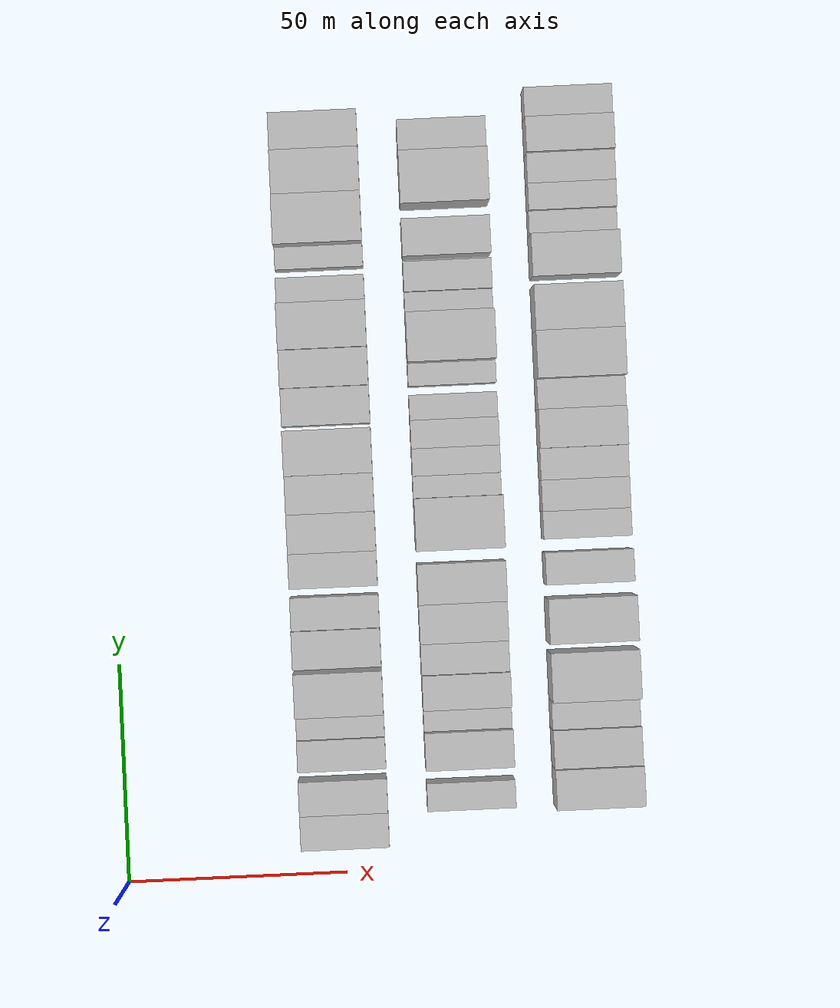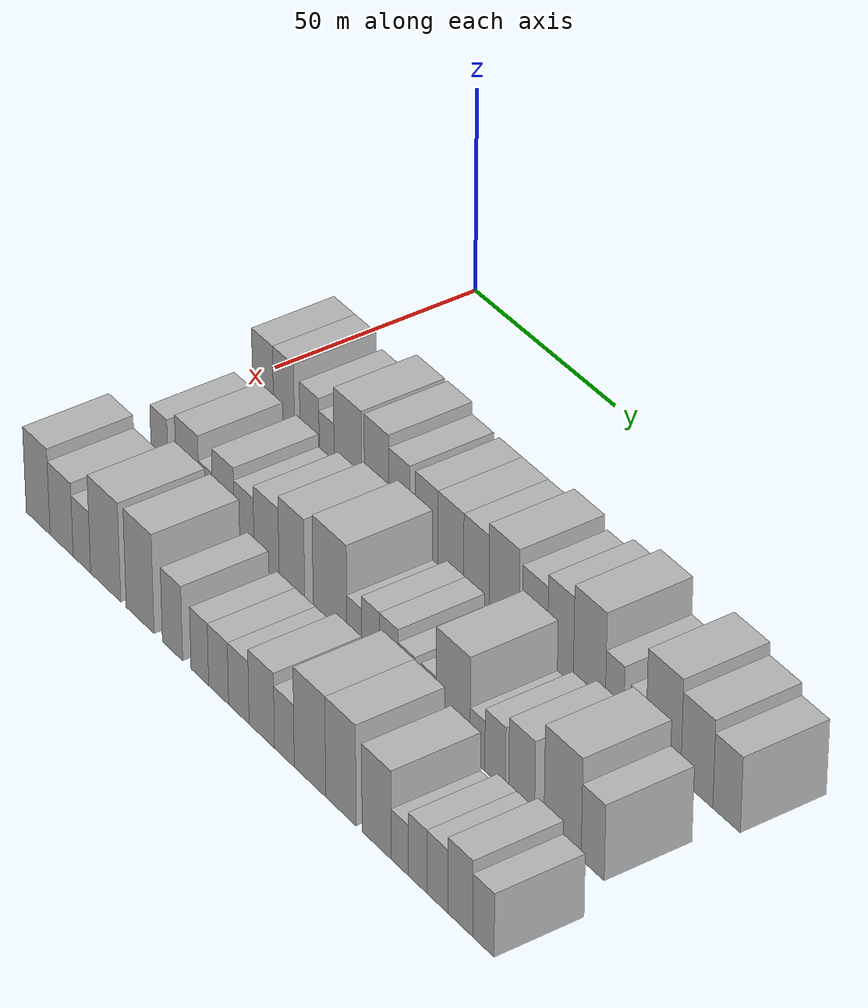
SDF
<sdf version="1.6">
 <world name="default">
  <model name="building_42">
   <static>1</static>
   <pose>50.0000 10.7546 0 0.000000 0.000000 0.000000</pose>
   <link name="link">
    <pose>0 0 9.00 0 0 0</pose>
    <collision name="collision"><geometry><box><size>20.0000 7.7320 18.0000</size></box></geometry></collision>
    <visual name="visual">
     <cast_shadows>0</cast_shadows>
     <geometry><box><size>20.0000 7.7320 18.0000</size></box></geometry>
     <material>
      <script>
       <uri>model://HANNAS_wall/materials/scripts</uri>
       <uri>model://HANNAS_wall/materials/textures</uri>
       <name>vrc/HANNAS_wall</name>
      </script>
     </material>
    </visual>
   </link>
  </model>
  <model name="building_43">
   <static>1</static>
   <pose>50.0000 18.4982 0 0.000000 0.000000 0.000000</pose>
   <link name="link">
    <pose>0 0 9.00 0 0 0</pose>
    <collision name="collision"><geometry><box><size>20.0000 7.7552 18.0000</size></box></geometry></collision>
    <visual name="visual">
     <cast_shadows>0</cast_shadows>
     <geometry><box><size>20.0000 7.7552 18.0000</size></box></geometry>
     <material>
      <script>
       <uri>model://HANNAS_wall/materials/scripts</uri>
       <uri>model://HANNAS_wall/materials/textures</uri>
       <name>vrc/HANNAS_wall</name>
      </script>
     </material>
    </visual>
   </link>
  </model>
  <model name="building_44">
   <static>1</static>
   <pose>50.0000 27.9174 0 0.000000 0.000000 0.000000</pose>
   <link name="link">
    <pose>0 0 7.50 0 0 0</pose>
    <collision name="collision"><geometry><box><size>20.0000 7.0834 15.0000</size></box></geometry></collision>
    <visual name="visual">
     <cast_shadows>0</cast_shadows>
     <geometry><box><size>20.0000 7.0834 15.0000</size></box></geometry>
     <material>
      <script>
       <uri>model://HANNAS_wall/materials/scripts</uri>
       <uri>model://HANNAS_wall/materials/textures</uri>
       <name>vrc/HANNAS_wall</name>
      </script>
     </material>
    </visual>
   </link>
  </model>
  <model name="building_45">
   <static>1</static>
   <pose>50.0000 34.1626 0 0.000000 0.000000 0.000000</pose>
   <link name="link">
    <pose>0 0 6.00 0 0 0</pose>
    <collision name="collision"><geometry><box><size>20.0000 5.4071 12.0000</size></box></geometry></collision>
    <visual name="visual">
     <cast_shadows>0</cast_shadows>
     <geometry><box><size>20.0000 5.4071 12.0000</size></box></geometry>
     <material>
      <script>
       <uri>model://HANNAS_wall/materials/scripts</uri>
       <uri>model://HANNAS_wall/materials/textures</uri>
       <name>vrc/HANNAS_wall</name>
      </script>
     </material>
    </visual>
   </link>
  </model>
  <model name="building_46">
   <static>1</static>
   <pose>50.0000 41.8215 0 0.000000 0.000000 0.000000</pose>
   <link name="link">
    <pose>0 0 10.50 0 0 0</pose>
    <collision name="collision"><geometry><box><size>20.0000 9.9106 21.0000</size></box></geometry></collision>
    <visual name="visual">
     <cast_shadows>0</cast_shadows>
     <geometry><box><size>20.0000 9.9106 21.0000</size></box></geometry>
     <material>
      <script>
       <uri>model://HANNAS_wall/materials/scripts</uri>
       <uri>model://HANNAS_wall/materials/textures</uri>
       <name>vrc/HANNAS_wall</name>
      </script>
     </material>
    </visual>
   </link>
  </model>
  <model name="building_47">
   <static>1</static>
   <pose>50.0000 52.1036 0 0.000000 0.000000 0.000000</pose>
   <link name="link">
    <pose>0 0 10.50 0 0 0</pose>
    <collision name="collision"><geometry><box><size>20.0000 8.6536 21.0000</size></box></geometry></collision>
    <visual name="visual">
     <cast_shadows>0</cast_shadows>
     <geometry><box><size>20.0000 8.6536 21.0000</size></box></geometry>
     <material>
      <script>
       <uri>model://HANNAS_wall/materials/scripts</uri>
       <uri>model://HANNAS_wall/materials/textures</uri>
       <name>vrc/HANNAS_wall</name>
      </script>
     </material>
    </visual>
   </link>
  </model>
  <model name="building_48">
   <static>1</static>
   <pose>50.0000 60.1718 0 0.000000 0.000000 0.000000</pose>
   <link name="link">
    <pose>0 0 9.00 0 0 0</pose>
    <collision name="collision"><geometry><box><size>20.0000 7.4828 18.0000</size></box></geometry></collision>
    <visual name="visual">
     <cast_shadows>0</cast_shadows>
     <geometry><box><size>20.0000 7.4828 18.0000</size></box></geometry>
     <material>
      <script>
       <uri>model://HANNAS_wall/materials/scripts</uri>
       <uri>model://HANNAS_wall/materials/textures</uri>
       <name>vrc/HANNAS_wall</name>
      </script>
     </material>
    </visual>
   </link>
  </model>
  <model name="building_49">
   <static>1</static>
   <pose>50.0000 69.8449 0 0.000000 0.000000 0.000000</pose>
   <link name="link">
    <pose>0 0 9.00 0 0 0</pose>
    <collision name="collision"><geometry><box><size>20.0000 7.8635 18.0000</size></box></geometry></collision>
    <visual name="visual">
     <cast_shadows>0</cast_shadows>
     <geometry><box><size>20.0000 7.8635 18.0000</size></box></geometry>
     <material>
      <script>
       <uri>model://HANNAS_wall/materials/scripts</uri>
       <uri>model://HANNAS_wall/materials/textures</uri>
       <name>vrc/HANNAS_wall</name>
      </script>
     </material>
    </visual>
   </link>
  </model>
  <model name="building_50">
   <static>1</static>
   <pose>50.0000 78.2156 0 0.000000 0.000000 0.000000</pose>
   <link name="link">
    <pose>0 0 9.00 0 0 0</pose>
    <collision name="collision"><geometry><box><size>20.0000 8.8777 18.0000</size></box></geometry></collision>
    <visual name="visual">
     <cast_shadows>0</cast_shadows>
     <geometry><box><size>20.0000 8.8777 18.0000</size></box></geometry>
     <material>
      <script>
       <uri>model://HANNAS_wall/materials/scripts</uri>
       <uri>model://HANNAS_wall/materials/textures</uri>
       <name>vrc/HANNAS_wall</name>
      </script>
     </material>
    </visual>
   </link>
  </model>
  <model name="building_51">
   <static>1</static>
   <pose>50.0000 87.0065 0 0.000000 0.000000 0.000000</pose>
   <link name="link">
    <pose>0 0 9.00 0 0 0</pose>
    <collision name="collision"><geometry><box><size>20.0000 8.7040 18.0000</size></box></geometry></collision>
    <visual name="visual">
     <cast_shadows>0</cast_shadows>
     <geometry><box><size>20.0000 8.7040 18.0000</size></box></geometry>
     <material>
      <script>
       <uri>model://HANNAS_wall/materials/scripts</uri>
       <uri>model://HANNAS_wall/materials/textures</uri>
       <name>vrc/HANNAS_wall</name>
      </script>
     </material>
    </visual>
   </link>
  </model>
  <model name="building_52">
   <static>1</static>
   <pose>50.0000 96.4628 0 0.000000 0.000000 0.000000</pose>
   <link name="link">
    <pose>0 0 10.50 0 0 0</pose>
    <collision name="collision"><geometry><box><size>20.0000 10.2087 21.0000</size></box></geometry></collision>
    <visual name="visual">
     <cast_shadows>0</cast_shadows>
     <geometry><box><size>20.0000 10.2087 21.0000</size></box></geometry>
     <material>
      <script>
       <uri>model://HANNAS_wall/materials/scripts</uri>
       <uri>model://HANNAS_wall/materials/textures</uri>
       <name>vrc/HANNAS_wall</name>
      </script>
     </material>
    </visual>
   </link>
  </model>
  <model name="building_53">
   <static>1</static>
   <pose>50.0000 106.8379 0 0.000000 0.000000 0.000000</pose>
   <link name="link">
    <pose>0 0 9.00 0 0 0</pose>
    <collision name="collision"><geometry><box><size>20.0000 8.5415 18.0000</size></box></geometry></collision>
    <visual name="visual">
     <cast_shadows>0</cast_shadows>
     <geometry><box><size>20.0000 8.5415 18.0000</size></box></geometry>
     <material>
      <script>
       <uri>model://HANNAS_wall/materials/scripts</uri>
       <uri>model://HANNAS_wall/materials/textures</uri>
       <name>vrc/HANNAS_wall</name>
      </script>
     </material>
    </visual>
   </link>
  </model>
  <model name="building_54">
   <static>1</static>
   <pose>50.0000 115.3977 0 0.000000 0.000000 0.000000</pose>
   <link name="link">
    <pose>0 0 10.50 0 0 0</pose>
    <collision name="collision"><geometry><box><size>20.0000 8.5783 21.0000</size></box></geometry></collision>
    <visual name="visual">
     <cast_shadows>0</cast_shadows>
     <geometry><box><size>20.0000 8.5783 21.0000</size></box></geometry>
     <material>
      <script>
       <uri>model://HANNAS_wall/materials/scripts</uri>
       <uri>model://HANNAS_wall/materials/textures</uri>
       <name>vrc/HANNAS_wall</name>
      </script>
     </material>
    </visual>
   </link>
  </model>
  <model name="building_55">
   <static>1</static>
   <pose>50.0000 124.9499 0 0.000000 0.000000 0.000000</pose>
   <link name="link">
    <pose>0 0 12.00 0 0 0</pose>
    <collision name="collision"><geometry><box><size>20.0000 10.5261 24.0000</size></box></geometry></collision>
    <visual name="visual">
     <cast_shadows>0</cast_shadows>
     <geometry><box><size>20.0000 10.5261 24.0000</size></box></geometry>
     <material>
      <script>
       <uri>model://HANNAS_wall/materials/scripts</uri>
       <uri>model://HANNAS_wall/materials/textures</uri>
       <name>vrc/HANNAS_wall</name>
      </script>
     </material>
    </visual>
   </link>
  </model>
  <model name="building_56">
   <static>1</static>
   <pose>50.0000 133.2304 0 0.000000 0.000000 0.000000</pose>
   <link name="link">
    <pose>0 0 7.50 0 0 0</pose>
    <collision name="collision"><geometry><box><size>20.0000 6.0347 15.0000</size></box></geometry></collision>
    <visual name="visual">
     <cast_shadows>0</cast_shadows>
     <geometry><box><size>20.0000 6.0347 15.0000</size></box></geometry>
     <material>
      <script>
       <uri>model://HANNAS_wall/materials/scripts</uri>
       <uri>model://HANNAS_wall/materials/textures</uri>
       <name>vrc/HANNAS_wall</name>
      </script>
     </material>
    </visual>
   </link>
  </model>
  <model name="building_57">
   <static>1</static>
   <pose>50.0000 140.8113 0 0.000000 0.000000 0.000000</pose>
   <link name="link">
    <pose>0 0 6.00 0 0 0</pose>
    <collision name="collision"><geometry><box><size>20.0000 5.1271 12.0000</size></box></geometry></collision>
    <visual name="visual">
     <cast_shadows>0</cast_shadows>
     <geometry><box><size>20.0000 5.1271 12.0000</size></box></geometry>
     <material>
      <script>
       <uri>model://HANNAS_wall/materials/scripts</uri>
       <uri>model://HANNAS_wall/materials/textures</uri>
       <name>vrc/HANNAS_wall</name>
      </script>
     </material>
    </visual>
   </link>
  </model>
  <model name="building_58">
   <static>1</static>
   <pose>50.0000 148.9888 0 0.000000 0.000000 0.000000</pose>
   <link name="link">
    <pose>0 0 12.00 0 0 0</pose>
    <collision name="collision"><geometry><box><size>20.0000 11.2279 24.0000</size></box></geometry></collision>
    <visual name="visual">
     <cast_shadows>0</cast_shadows>
     <geometry><box><size>20.0000 11.2279 24.0000</size></box></geometry>
     <material>
      <script>
       <uri>model://HANNAS_wall/materials/scripts</uri>
       <uri>model://HANNAS_wall/materials/textures</uri>
       <name>vrc/HANNAS_wall</name>
      </script>
     </material>
    </visual>
   </link>
  </model>
  <model name="building_59">
   <static>1</static>
   <pose>50.0000 159.6870 0 0.000000 0.000000 0.000000</pose>
   <link name="link">
    <pose>0 0 10.50 0 0 0</pose>
    <collision name="collision"><geometry><box><size>20.0000 10.1684 21.0000</size></box></geometry></collision>
    <visual name="visual">
     <cast_shadows>0</cast_shadows>
     <geometry><box><size>20.0000 10.1684 21.0000</size></box></geometry>
     <material>
      <script>
       <uri>model://HANNAS_wall/materials/scripts</uri>
       <uri>model://HANNAS_wall/materials/textures</uri>
       <name>vrc/HANNAS_wall</name>
      </script>
     </material>
    </visual>
   </link>
  </model>
  <model name="building_60">
   <static>1</static>
   <pose>50.0000 169.0942 0 0.000000 0.000000 0.000000</pose>
   <link name="link">
    <pose>0 0 9.00 0 0 0</pose>
    <collision name="collision"><geometry><box><size>20.0000 8.6460 18.0000</size></box></geometry></collision>
    <visual name="visual">
     <cast_shadows>0</cast_shadows>
     <geometry><box><size>20.0000 8.6460 18.0000</size></box></geometry>
     <material>
      <script>
       <uri>model://HANNAS_wall/materials/scripts</uri>
       <uri>model://HANNAS_wall/materials/textures</uri>
       <name>vrc/HANNAS_wall</name>
      </script>
     </material>
    </visual>
   </link>
  </model>
  <model name="building_114">
   <static>1</static>
   <pose>79.0000 17.4192 0 0.000000 0.000000 0.000000</pose>
   <link name="link">
    <pose>0 0 7.50 0 0 0</pose>
    <collision name="collision"><geometry><box><size>20.0000 6.3060 15.0000</size></box></geometry></collision>
    <visual name="visual">
     <cast_shadows>0</cast_shadows>
     <geometry><box><size>20.0000 6.3060 15.0000</size></box></geometry>
     <material>
      <script>
       <uri>model://HANNAS_wall/materials/scripts</uri>
       <uri>model://HANNAS_wall/materials/textures</uri>
       <name>vrc/HANNAS_wall</name>
      </script>
     </material>
    </visual>
   </link>
  </model>
  <model name="building_115">
   <static>1</static>
   <pose>79.0000 27.8315 0 0.000000 0.000000 0.000000</pose>
   <link name="link">
    <pose>0 0 9.00 0 0 0</pose>
    <collision name="collision"><geometry><box><size>20.0000 8.5186 18.0000</size></box></geometry></collision>
    <visual name="visual">
     <cast_shadows>0</cast_shadows>
     <geometry><box><size>20.0000 8.5186 18.0000</size></box></geometry>
     <material>
      <script>
       <uri>model://HANNAS_wall/materials/scripts</uri>
       <uri>model://HANNAS_wall/materials/textures</uri>
       <name>vrc/HANNAS_wall</name>
      </script>
     </material>
    </visual>
   </link>
  </model>
  <model name="building_116">
   <static>1</static>
   <pose>79.0000 34.6011 0 0.000000 0.000000 0.000000</pose>
   <link name="link">
    <pose>0 0 6.00 0 0 0</pose>
    <collision name="collision"><geometry><box><size>20.0000 5.0207 12.0000</size></box></geometry></collision>
    <visual name="visual">
     <cast_shadows>0</cast_shadows>
     <geometry><box><size>20.0000 5.0207 12.0000</size></box></geometry>
     <material>
      <script>
       <uri>model://HANNAS_wall/materials/scripts</uri>
       <uri>model://HANNAS_wall/materials/textures</uri>
       <name>vrc/HANNAS_wall</name>
      </script>
     </material>
    </visual>
   </link>
  </model>
  <model name="building_117">
   <static>1</static>
   <pose>79.0000 41.0628 0 0.000000 0.000000 0.000000</pose>
   <link name="link">
    <pose>0 0 9.00 0 0 0</pose>
    <collision name="collision"><geometry><box><size>20.0000 7.9028 18.0000</size></box></geometry></collision>
    <visual name="visual">
     <cast_shadows>0</cast_shadows>
     <geometry><box><size>20.0000 7.9028 18.0000</size></box></geometry>
     <material>
      <script>
       <uri>model://HANNAS_wall/materials/scripts</uri>
       <uri>model://HANNAS_wall/materials/textures</uri>
       <name>vrc/HANNAS_wall</name>
      </script>
     </material>
    </visual>
   </link>
  </model>
  <model name="building_118">
   <static>1</static>
   <pose>79.0000 48.5735 0 0.000000 0.000000 0.000000</pose>
   <link name="link">
    <pose>0 0 7.50 0 0 0</pose>
    <collision name="collision"><geometry><box><size>20.0000 7.1185 15.0000</size></box></geometry></collision>
    <visual name="visual">
     <cast_shadows>0</cast_shadows>
     <geometry><box><size>20.0000 7.1185 15.0000</size></box></geometry>
     <material>
      <script>
       <uri>model://HANNAS_wall/materials/scripts</uri>
       <uri>model://HANNAS_wall/materials/textures</uri>
       <name>vrc/HANNAS_wall</name>
      </script>
     </material>
    </visual>
   </link>
  </model>
  <model name="building_119">
   <static>1</static>
   <pose>79.0000 56.6145 0 0.000000 0.000000 0.000000</pose>
   <link name="link">
    <pose>0 0 9.00 0 0 0</pose>
    <collision name="collision"><geometry><box><size>20.0000 8.9637 18.0000</size></box></geometry></collision>
    <visual name="visual">
     <cast_shadows>0</cast_shadows>
     <geometry><box><size>20.0000 8.9637 18.0000</size></box></geometry>
     <material>
      <script>
       <uri>model://HANNAS_wall/materials/scripts</uri>
       <uri>model://HANNAS_wall/materials/textures</uri>
       <name>vrc/HANNAS_wall</name>
      </script>
     </material>
    </visual>
   </link>
  </model>
  <model name="building_120">
   <static>1</static>
   <pose>79.0000 65.6613 0 0.000000 0.000000 0.000000</pose>
   <link name="link">
    <pose>0 0 10.50 0 0 0</pose>
    <collision name="collision"><geometry><box><size>20.0000 9.1299 21.0000</size></box></geometry></collision>
    <visual name="visual">
     <cast_shadows>0</cast_shadows>
     <geometry><box><size>20.0000 9.1299 21.0000</size></box></geometry>
     <material>
      <script>
       <uri>model://HANNAS_wall/materials/scripts</uri>
       <uri>model://HANNAS_wall/materials/textures</uri>
       <name>vrc/HANNAS_wall</name>
      </script>
     </material>
    </visual>
   </link>
  </model>
  <model name="building_121">
   <static>1</static>
   <pose>79.0000 79.1402 0 0.000000 0.000000 0.000000</pose>
   <link name="link">
    <pose>0 0 12.00 0 0 0</pose>
    <collision name="collision"><geometry><box><size>20.0000 11.8278 24.0000</size></box></geometry></collision>
    <visual name="visual">
     <cast_shadows>0</cast_shadows>
     <geometry><box><size>20.0000 11.8278 24.0000</size></box></geometry>
     <material>
      <script>
       <uri>model://HANNAS_wall/materials/scripts</uri>
       <uri>model://HANNAS_wall/materials/textures</uri>
       <name>vrc/HANNAS_wall</name>
      </script>
     </material>
    </visual>
   </link>
  </model>
  <model name="building_122">
   <static>1</static>
   <pose>79.0000 87.5717 0 0.000000 0.000000 0.000000</pose>
   <link name="link">
    <pose>0 0 6.00 0 0 0</pose>
    <collision name="collision"><geometry><box><size>20.0000 5.0352 12.0000</size></box></geometry></collision>
    <visual name="visual">
     <cast_shadows>0</cast_shadows>
     <geometry><box><size>20.0000 5.0352 12.0000</size></box></geometry>
     <material>
      <script>
       <uri>model://HANNAS_wall/materials/scripts</uri>
       <uri>model://HANNAS_wall/materials/textures</uri>
       <name>vrc/HANNAS_wall</name>
      </script>
     </material>
    </visual>
   </link>
  </model>
  <model name="building_123">
   <static>1</static>
   <pose>79.0000 93.2001 0 0.000000 0.000000 0.000000</pose>
   <link name="link">
    <pose>0 0 7.50 0 0 0</pose>
    <collision name="collision"><geometry><box><size>20.0000 6.2215 15.0000</size></box></geometry></collision>
    <visual name="visual">
     <cast_shadows>0</cast_shadows>
     <geometry><box><size>20.0000 6.2215 15.0000</size></box></geometry>
     <material>
      <script>
       <uri>model://HANNAS_wall/materials/scripts</uri>
       <uri>model://HANNAS_wall/materials/textures</uri>
       <name>vrc/HANNAS_wall</name>
      </script>
     </material>
    </visual>
   </link>
  </model>
  <model name="building_124">
   <static>1</static>
   <pose>79.0000 99.5261 0 0.000000 0.000000 0.000000</pose>
   <link name="link">
    <pose>0 0 7.50 0 0 0</pose>
    <collision name="collision"><geometry><box><size>20.0000 6.4305 15.0000</size></box></geometry></collision>
    <visual name="visual">
     <cast_shadows>0</cast_shadows>
     <geometry><box><size>20.0000 6.4305 15.0000</size></box></geometry>
     <material>
      <script>
       <uri>model://HANNAS_wall/materials/scripts</uri>
       <uri>model://HANNAS_wall/materials/textures</uri>
       <name>vrc/HANNAS_wall</name>
      </script>
     </material>
    </visual>
   </link>
  </model>
  <model name="building_125">
   <static>1</static>
   <pose>79.0000 105.6167 0 0.000000 0.000000 0.000000</pose>
   <link name="link">
    <pose>0 0 6.00 0 0 0</pose>
    <collision name="collision"><geometry><box><size>20.0000 5.7505 12.0000</size></box></geometry></collision>
    <visual name="visual">
     <cast_shadows>0</cast_shadows>
     <geometry><box><size>20.0000 5.7505 12.0000</size></box></geometry>
     <material>
      <script>
       <uri>model://HANNAS_wall/materials/scripts</uri>
       <uri>model://HANNAS_wall/materials/textures</uri>
       <name>vrc/HANNAS_wall</name>
      </script>
     </material>
    </visual>
   </link>
  </model>
  <model name="building_126">
   <static>1</static>
   <pose>79.0000 113.0846 0 0.000000 0.000000 0.000000</pose>
   <link name="link">
    <pose>0 0 6.00 0 0 0</pose>
    <collision name="collision"><geometry><box><size>20.0000 5.1854 12.0000</size></box></geometry></collision>
    <visual name="visual">
     <cast_shadows>0</cast_shadows>
     <geometry><box><size>20.0000 5.1854 12.0000</size></box></geometry>
     <material>
      <script>
       <uri>model://HANNAS_wall/materials/scripts</uri>
       <uri>model://HANNAS_wall/materials/textures</uri>
       <name>vrc/HANNAS_wall</name>
      </script>
     </material>
    </visual>
   </link>
  </model>
  <model name="building_127">
   <static>1</static>
   <pose>79.0000 121.2995 0 0.000000 0.000000 0.000000</pose>
   <link name="link">
    <pose>0 0 12.00 0 0 0</pose>
    <collision name="collision"><geometry><box><size>20.0000 11.2445 24.0000</size></box></geometry></collision>
    <visual name="visual">
     <cast_shadows>0</cast_shadows>
     <geometry><box><size>20.0000 11.2445 24.0000</size></box></geometry>
     <material>
      <script>
       <uri>model://HANNAS_wall/materials/scripts</uri>
       <uri>model://HANNAS_wall/materials/textures</uri>
       <name>vrc/HANNAS_wall</name>
      </script>
     </material>
    </visual>
   </link>
  </model>
  <model name="building_128">
   <static>1</static>
   <pose>79.0000 129.3780 0 0.000000 0.000000 0.000000</pose>
   <link name="link">
    <pose>0 0 6.00 0 0 0</pose>
    <collision name="collision"><geometry><box><size>20.0000 4.9124 12.0000</size></box></geometry></collision>
    <visual name="visual">
     <cast_shadows>0</cast_shadows>
     <geometry><box><size>20.0000 4.9124 12.0000</size></box></geometry>
     <material>
      <script>
       <uri>model://HANNAS_wall/materials/scripts</uri>
       <uri>model://HANNAS_wall/materials/textures</uri>
       <name>vrc/HANNAS_wall</name>
      </script>
     </material>
    </visual>
   </link>
  </model>
  <model name="building_129">
   <static>1</static>
   <pose>79.0000 135.2543 0 0.000000 0.000000 0.000000</pose>
   <link name="link">
    <pose>0 0 7.50 0 0 0</pose>
    <collision name="collision"><geometry><box><size>20.0000 6.8402 15.0000</size></box></geometry></collision>
    <visual name="visual">
     <cast_shadows>0</cast_shadows>
     <geometry><box><size>20.0000 6.8402 15.0000</size></box></geometry>
     <material>
      <script>
       <uri>model://HANNAS_wall/materials/scripts</uri>
       <uri>model://HANNAS_wall/materials/textures</uri>
       <name>vrc/HANNAS_wall</name>
      </script>
     </material>
    </visual>
   </link>
  </model>
  <model name="building_130">
   <static>1</static>
   <pose>79.0000 143.9314 0 0.000000 0.000000 0.000000</pose>
   <link name="link">
    <pose>0 0 9.00 0 0 0</pose>
    <collision name="collision"><geometry><box><size>20.0000 8.5140 18.0000</size></box></geometry></collision>
    <visual name="visual">
     <cast_shadows>0</cast_shadows>
     <geometry><box><size>20.0000 8.5140 18.0000</size></box></geometry>
     <material>
      <script>
       <uri>model://HANNAS_wall/materials/scripts</uri>
       <uri>model://HANNAS_wall/materials/textures</uri>
       <name>vrc/HANNAS_wall</name>
      </script>
     </material>
    </visual>
   </link>
  </model>
  <model name="building_131">
   <static>1</static>
   <pose>79.0000 157.1589 0 0.000000 0.000000 0.000000</pose>
   <link name="link">
    <pose>0 0 12.00 0 0 0</pose>
    <collision name="collision"><geometry><box><size>20.0000 11.9410 24.0000</size></box></geometry></collision>
    <visual name="visual">
     <cast_shadows>0</cast_shadows>
     <geometry><box><size>20.0000 11.9410 24.0000</size></box></geometry>
     <material>
      <script>
       <uri>model://HANNAS_wall/materials/scripts</uri>
       <uri>model://HANNAS_wall/materials/textures</uri>
       <name>vrc/HANNAS_wall</name>
      </script>
     </material>
    </visual>
   </link>
  </model>
  <model name="building_132">
   <static>1</static>
   <pose>79.0000 166.8047 0 0.000000 0.000000 0.000000</pose>
   <link name="link">
    <pose>0 0 9.00 0 0 0</pose>
    <collision name="collision"><geometry><box><size>20.0000 7.3505 18.0000</size></box></geometry></collision>
    <visual name="visual">
     <cast_shadows>0</cast_shadows>
     <geometry><box><size>20.0000 7.3505 18.0000</size></box></geometry>
     <material>
      <script>
       <uri>model://HANNAS_wall/materials/scripts</uri>
       <uri>model://HANNAS_wall/materials/textures</uri>
       <name>vrc/HANNAS_wall</name>
      </script>
     </material>
    </visual>
   </link>
  </model>
  <model name="building_187">
   <static>1</static>
   <pose>108.0000 18.1432 0 0.000000 0.000000 0.000000</pose>
   <link name="link">
    <pose>0 0 10.50 0 0 0</pose>
    <collision name="collision"><geometry><box><size>20.0000 9.0304 21.0000</size></box></geometry></collision>
    <visual name="visual">
     <cast_shadows>0</cast_shadows>
     <geometry><box><size>20.0000 9.0304 21.0000</size></box></geometry>
     <material>
      <script>
       <uri>model://HANNAS_wall/materials/scripts</uri>
       <uri>model://HANNAS_wall/materials/textures</uri>
       <name>vrc/HANNAS_wall</name>
      </script>
     </material>
    </visual>
   </link>
  </model>
  <model name="building_188">
   <static>1</static>
   <pose>108.0000 27.0193 0 0.000000 0.000000 0.000000</pose>
   <link name="link">
    <pose>0 0 9.00 0 0 0</pose>
    <collision name="collision"><geometry><box><size>20.0000 8.7217 18.0000</size></box></geometry></collision>
    <visual name="visual">
     <cast_shadows>0</cast_shadows>
     <geometry><box><size>20.0000 8.7217 18.0000</size></box></geometry>
     <material>
      <script>
       <uri>model://HANNAS_wall/materials/scripts</uri>
       <uri>model://HANNAS_wall/materials/textures</uri>
       <name>vrc/HANNAS_wall</name>
      </script>
     </material>
    </visual>
   </link>
  </model>
  <model name="building_189">
   <static>1</static>
   <pose>108.0000 34.6457 0 0.000000 0.000000 0.000000</pose>
   <link name="link">
    <pose>0 0 7.50 0 0 0</pose>
    <collision name="collision"><geometry><box><size>20.0000 6.5312 15.0000</size></box></geometry></collision>
    <visual name="visual">
     <cast_shadows>0</cast_shadows>
     <geometry><box><size>20.0000 6.5312 15.0000</size></box></geometry>
     <material>
      <script>
       <uri>model://HANNAS_wall/materials/scripts</uri>
       <uri>model://HANNAS_wall/materials/textures</uri>
       <name>vrc/HANNAS_wall</name>
      </script>
     </material>
    </visual>
   </link>
  </model>
  <model name="building_190">
   <static>1</static>
   <pose>108.0000 43.4810 0 0.000000 0.000000 0.000000</pose>
   <link name="link">
    <pose>0 0 12.00 0 0 0</pose>
    <collision name="collision"><geometry><box><size>20.0000 11.1395 24.0000</size></box></geometry></collision>
    <visual name="visual">
     <cast_shadows>0</cast_shadows>
     <geometry><box><size>20.0000 11.1395 24.0000</size></box></geometry>
     <material>
      <script>
       <uri>model://HANNAS_wall/materials/scripts</uri>
       <uri>model://HANNAS_wall/materials/textures</uri>
       <name>vrc/HANNAS_wall</name>
      </script>
     </material>
    </visual>
   </link>
  </model>
  <model name="building_191">
   <static>1</static>
   <pose>108.0000 56.1351 0 0.000000 0.000000 0.000000</pose>
   <link name="link">
    <pose>0 0 12.00 0 0 0</pose>
    <collision name="collision"><geometry><box><size>20.0000 10.1688 24.0000</size></box></geometry></collision>
    <visual name="visual">
     <cast_shadows>0</cast_shadows>
     <geometry><box><size>20.0000 10.1688 24.0000</size></box></geometry>
     <material>
      <script>
       <uri>model://HANNAS_wall/materials/scripts</uri>
       <uri>model://HANNAS_wall/materials/textures</uri>
       <name>vrc/HANNAS_wall</name>
      </script>
     </material>
    </visual>
   </link>
  </model>
  <model name="building_192">
   <static>1</static>
   <pose>108.0000 67.8744 0 0.000000 0.000000 0.000000</pose>
   <link name="link">
    <pose>0 0 9.00 0 0 0</pose>
    <collision name="collision"><geometry><box><size>20.0000 7.3099 18.0000</size></box></geometry></collision>
    <visual name="visual">
     <cast_shadows>0</cast_shadows>
     <geometry><box><size>20.0000 7.3099 18.0000</size></box></geometry>
     <material>
      <script>
       <uri>model://HANNAS_wall/materials/scripts</uri>
       <uri>model://HANNAS_wall/materials/textures</uri>
       <name>vrc/HANNAS_wall</name>
      </script>
     </material>
    </visual>
   </link>
  </model>
  <model name="building_193">
   <static>1</static>
   <pose>108.0000 77.6681 0 0.000000 0.000000 0.000000</pose>
   <link name="link">
    <pose>0 0 7.50 0 0 0</pose>
    <collision name="collision"><geometry><box><size>20.0000 6.2776 15.0000</size></box></geometry></collision>
    <visual name="visual">
     <cast_shadows>0</cast_shadows>
     <geometry><box><size>20.0000 6.2776 15.0000</size></box></geometry>
     <material>
      <script>
       <uri>model://HANNAS_wall/materials/scripts</uri>
       <uri>model://HANNAS_wall/materials/textures</uri>
       <name>vrc/HANNAS_wall</name>
      </script>
     </material>
    </visual>
   </link>
  </model>
  <model name="building_194">
   <static>1</static>
   <pose>108.0000 84.3473 0 0.000000 0.000000 0.000000</pose>
   <link name="link">
    <pose>0 0 7.50 0 0 0</pose>
    <collision name="collision"><geometry><box><size>20.0000 7.0807 15.0000</size></box></geometry></collision>
    <visual name="visual">
     <cast_shadows>0</cast_shadows>
     <geometry><box><size>20.0000 7.0807 15.0000</size></box></geometry>
     <material>
      <script>
       <uri>model://HANNAS_wall/materials/scripts</uri>
       <uri>model://HANNAS_wall/materials/textures</uri>
       <name>vrc/HANNAS_wall</name>
      </script>
     </material>
    </visual>
   </link>
  </model>
  <model name="building_195">
   <static>1</static>
   <pose>108.0000 91.4745 0 0.000000 0.000000 0.000000</pose>
   <link name="link">
    <pose>0 0 7.50 0 0 0</pose>
    <collision name="collision"><geometry><box><size>20.0000 7.1737 15.0000</size></box></geometry></collision>
    <visual name="visual">
     <cast_shadows>0</cast_shadows>
     <geometry><box><size>20.0000 7.1737 15.0000</size></box></geometry>
     <material>
      <script>
       <uri>model://HANNAS_wall/materials/scripts</uri>
       <uri>model://HANNAS_wall/materials/textures</uri>
       <name>vrc/HANNAS_wall</name>
      </script>
     </material>
    </visual>
   </link>
  </model>
  <model name="building_196">
   <static>1</static>
   <pose>108.0000 99.4772 0 0.000000 0.000000 0.000000</pose>
   <link name="link">
    <pose>0 0 9.00 0 0 0</pose>
    <collision name="collision"><geometry><box><size>20.0000 8.8316 18.0000</size></box></geometry></collision>
    <visual name="visual">
     <cast_shadows>0</cast_shadows>
     <geometry><box><size>20.0000 8.8316 18.0000</size></box></geometry>
     <material>
      <script>
       <uri>model://HANNAS_wall/materials/scripts</uri>
       <uri>model://HANNAS_wall/materials/textures</uri>
       <name>vrc/HANNAS_wall</name>
      </script>
     </material>
    </visual>
   </link>
  </model>
  <model name="building_197">
   <static>1</static>
   <pose>108.0000 107.3075 0 0.000000 0.000000 0.000000</pose>
   <link name="link">
    <pose>0 0 7.50 0 0 0</pose>
    <collision name="collision"><geometry><box><size>20.0000 6.8290 15.0000</size></box></geometry></collision>
    <visual name="visual">
     <cast_shadows>0</cast_shadows>
     <geometry><box><size>20.0000 6.8290 15.0000</size></box></geometry>
     <material>
      <script>
       <uri>model://HANNAS_wall/materials/scripts</uri>
       <uri>model://HANNAS_wall/materials/textures</uri>
       <name>vrc/HANNAS_wall</name>
      </script>
     </material>
    </visual>
   </link>
  </model>
  <model name="building_198">
   <static>1</static>
   <pose>108.0000 116.0840 0 0.000000 0.000000 0.000000</pose>
   <link name="link">
    <pose>0 0 12.00 0 0 0</pose>
    <collision name="collision"><geometry><box><size>20.0000 10.7242 24.0000</size></box></geometry></collision>
    <visual name="visual">
     <cast_shadows>0</cast_shadows>
     <geometry><box><size>20.0000 10.7242 24.0000</size></box></geometry>
     <material>
      <script>
       <uri>model://HANNAS_wall/materials/scripts</uri>
       <uri>model://HANNAS_wall/materials/textures</uri>
       <name>vrc/HANNAS_wall</name>
      </script>
     </material>
    </visual>
   </link>
  </model>
  <model name="building_199">
   <static>1</static>
   <pose>108.0000 126.5616 0 0.000000 0.000000 0.000000</pose>
   <link name="link">
    <pose>0 0 12.00 0 0 0</pose>
    <collision name="collision"><geometry><box><size>20.0000 10.2310 24.0000</size></box></geometry></collision>
    <visual name="visual">
     <cast_shadows>0</cast_shadows>
     <geometry><box><size>20.0000 10.2310 24.0000</size></box></geometry>
     <material>
      <script>
       <uri>model://HANNAS_wall/materials/scripts</uri>
       <uri>model://HANNAS_wall/materials/textures</uri>
       <name>vrc/HANNAS_wall</name>
      </script>
     </material>
    </visual>
   </link>
  </model>
  <model name="building_200">
   <static>1</static>
   <pose>108.0000 138.5178 0 0.000000 0.000000 0.000000</pose>
   <link name="link">
    <pose>0 0 10.50 0 0 0</pose>
    <collision name="collision"><geometry><box><size>20.0000 9.6813 21.0000</size></box></geometry></collision>
    <visual name="visual">
     <cast_shadows>0</cast_shadows>
     <geometry><box><size>20.0000 9.6813 21.0000</size></box></geometry>
     <material>
      <script>
       <uri>model://HANNAS_wall/materials/scripts</uri>
       <uri>model://HANNAS_wall/materials/textures</uri>
       <name>vrc/HANNAS_wall</name>
      </script>
     </material>
    </visual>
   </link>
  </model>
  <model name="building_201">
   <static>1</static>
   <pose>108.0000 146.1534 0 0.000000 0.000000 0.000000</pose>
   <link name="link">
    <pose>0 0 6.00 0 0 0</pose>
    <collision name="collision"><geometry><box><size>20.0000 5.5901 12.0000</size></box></geometry></collision>
    <visual name="visual">
     <cast_shadows>0</cast_shadows>
     <geometry><box><size>20.0000 5.5901 12.0000</size></box></geometry>
     <material>
      <script>
       <uri>model://HANNAS_wall/materials/scripts</uri>
       <uri>model://HANNAS_wall/materials/textures</uri>
       <name>vrc/HANNAS_wall</name>
      </script>
     </material>
    </visual>
   </link>
  </model>
  <model name="building_202">
   <static>1</static>
   <pose>108.0000 152.0021 0 0.000000 0.000000 0.000000</pose>
   <link name="link">
    <pose>0 0 7.50 0 0 0</pose>
    <collision name="collision"><geometry><box><size>20.0000 6.1072 15.0000</size></box></geometry></collision>
    <visual name="visual">
     <cast_shadows>0</cast_shadows>
     <geometry><box><size>20.0000 6.1072 15.0000</size></box></geometry>
     <material>
      <script>
       <uri>model://HANNAS_wall/materials/scripts</uri>
       <uri>model://HANNAS_wall/materials/textures</uri>
       <name>vrc/HANNAS_wall</name>
      </script>
     </material>
    </visual>
   </link>
  </model>
  <model name="building_203">
   <static>1</static>
   <pose>108.0000 158.4742 0 0.000000 0.000000 0.000000</pose>
   <link name="link">
    <pose>0 0 7.50 0 0 0</pose>
    <collision name="collision"><geometry><box><size>20.0000 6.8371 15.0000</size></box></geometry></collision>
    <visual name="visual">
     <cast_shadows>0</cast_shadows>
     <geometry><box><size>20.0000 6.8371 15.0000</size></box></geometry>
     <material>
      <script>
       <uri>model://HANNAS_wall/materials/scripts</uri>
       <uri>model://HANNAS_wall/materials/textures</uri>
       <name>vrc/HANNAS_wall</name>
      </script>
     </material>
    </visual>
   </link>
  </model>
  <model name="building_204">
   <static>1</static>
   <pose>108.0000 165.8925 0 0.000000 0.000000 0.000000</pose>
   <link name="link">
    <pose>0 0 9.00 0 0 0</pose>
    <collision name="collision"><geometry><box><size>20.0000 7.9996 18.0000</size></box></geometry></collision>
    <visual name="visual">
     <cast_shadows>0</cast_shadows>
     <geometry><box><size>20.0000 7.9996 18.0000</size></box></geometry>
     <material>
      <script>
       <uri>model://HANNAS_wall/materials/scripts</uri>
       <uri>model://HANNAS_wall/materials/textures</uri>
       <name>vrc/HANNAS_wall</name>
      </script>
     </material>
    </visual>
   </link>
  </model>
  <model name="building_205">
   <static>1</static>
   <pose>108.0000 173.3184 0 0.000000 0.000000 0.000000</pose>
   <link name="link">
    <pose>0 0 7.50 0 0 0</pose>
    <collision name="collision"><geometry><box><size>20.0000 6.8520 15.0000</size></box></geometry></collision>
    <visual name="visual">
     <cast_shadows>0</cast_shadows>
     <geometry><box><size>20.0000 6.8520 15.0000</size></box></geometry>
     <material>
      <script>
       <uri>model://HANNAS_wall/materials/scripts</uri>
       <uri>model://HANNAS_wall/materials/textures</uri>
       <name>vrc/HANNAS_wall</name>
      </script>
     </material>
    </visual>
   </link>
  </model>
 </world>
</sdf>
